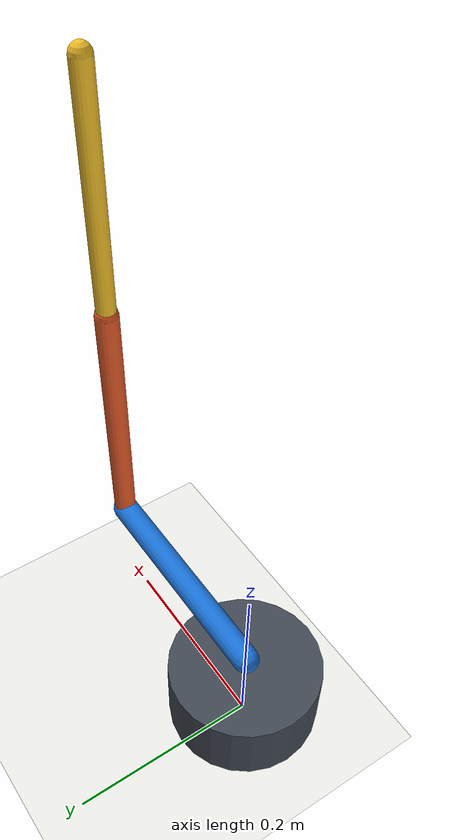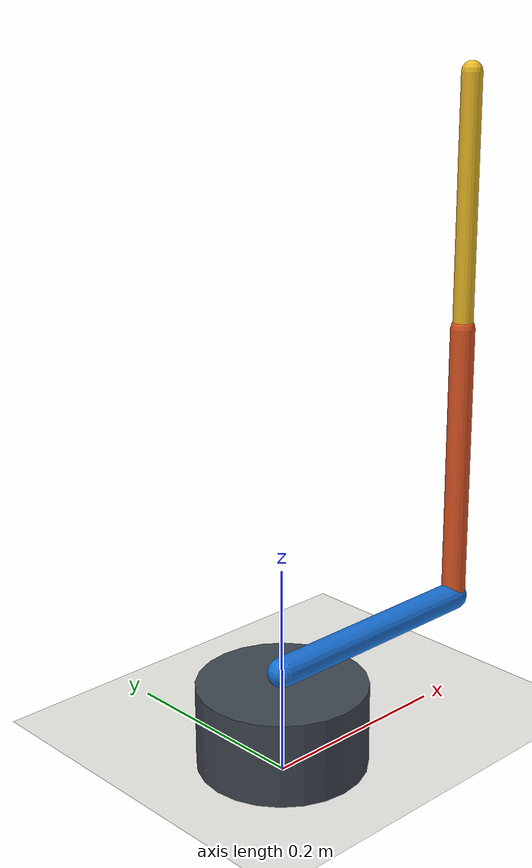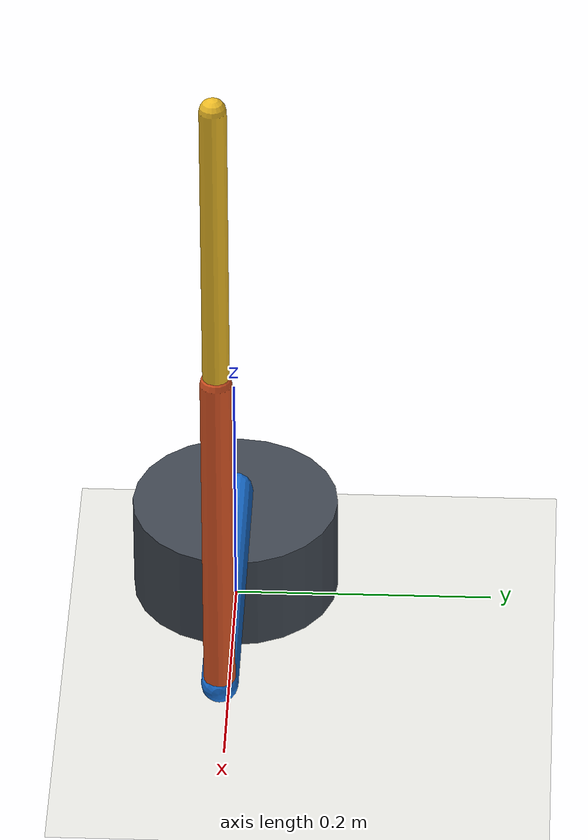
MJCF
<mujoco model="double_rotary_pendulum">
  <compiler angle="radian" inertiafromgeom="true"/>
  <option timestep="0.002" integrator="RK4" gravity="0 0 -9.81"/>

  <default>
    <joint damping="0.005" armature="0.001"/>
    <geom density="650" friction="0.8 0.1 0.1"/>
  </default>

  <asset>
    <material name="mat_base" rgba="0.25 0.28 0.32 1"/>
    <material name="mat_arm" rgba="0.1 0.45 0.85 1"/>
    <material name="mat_link1" rgba="0.9 0.35 0.15 1"/>
    <material name="mat_link2" rgba="0.95 0.75 0.15 1"/>
  </asset>

  <worldbody>
    <light name="key_light" pos="0 -1 1.5" dir="0 1 -1" diffuse="0.8 0.8 0.8"/>
    <geom name="floor" type="plane" size="1.5 1.5 0.02" rgba="0.92 0.92 0.9 1"/>

    <body name="base" pos="0 0 0.05">
      <geom name="base_geom" type="cylinder" size="0.08 0.04" material="mat_base"/>

      <body name="rotary_arm" pos="0 0 0.05">
        <joint name="shoulder_yaw" type="hinge" axis="0 0 1" limited="false" damping="0.02"/>
        <geom name="arm_geom" type="capsule" fromto="0 0 0 0.24 0 0" size="0.014" material="mat_arm"/>

        <body name="pendulum_1_body" pos="0.24 0 0">
          <joint name="pendulum_1" type="hinge" axis="0 1 0" limited="false" damping="0.004"/>
          <geom name="pendulum_1_geom" type="capsule" fromto="0 0 0 0 0 0.28" size="0.012" material="mat_link1"/>

          <body name="pendulum_2_body" pos="0 0 0.28">
            <joint name="pendulum_2" type="hinge" axis="0 1 0" limited="false" damping="0.003"/>
            <geom name="pendulum_2_geom" type="capsule" fromto="0 0 0 0 0 0.24" size="0.01" material="mat_link2"/>
          </body>
        </body>
      </body>
    </body>
  </worldbody>

  <actuator>
    <motor name="yaw_torque" joint="shoulder_yaw" gear="1" ctrlrange="-2.0 2.0"/>
  </actuator>

  <sensor>
    <jointpos name="shoulder_yaw_pos" joint="shoulder_yaw"/>
    <jointpos name="pendulum_1_pos" joint="pendulum_1"/>
    <jointpos name="pendulum_2_pos" joint="pendulum_2"/>
    <jointvel name="shoulder_yaw_vel" joint="shoulder_yaw"/>
    <jointvel name="pendulum_1_vel" joint="pendulum_1"/>
    <jointvel name="pendulum_2_vel" joint="pendulum_2"/>
  </sensor>
</mujoco>
